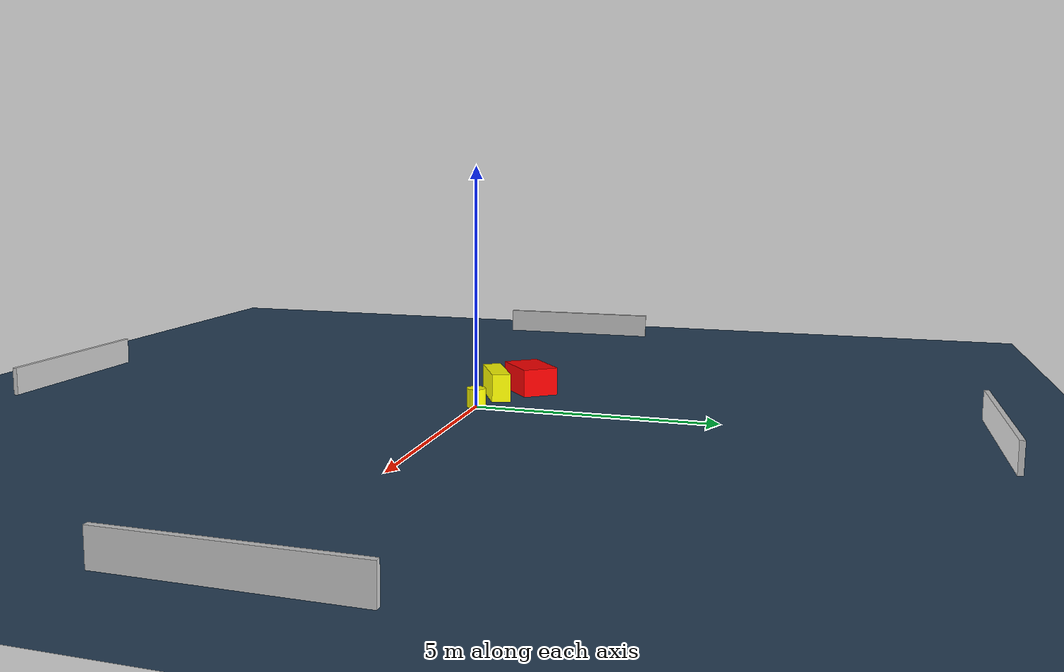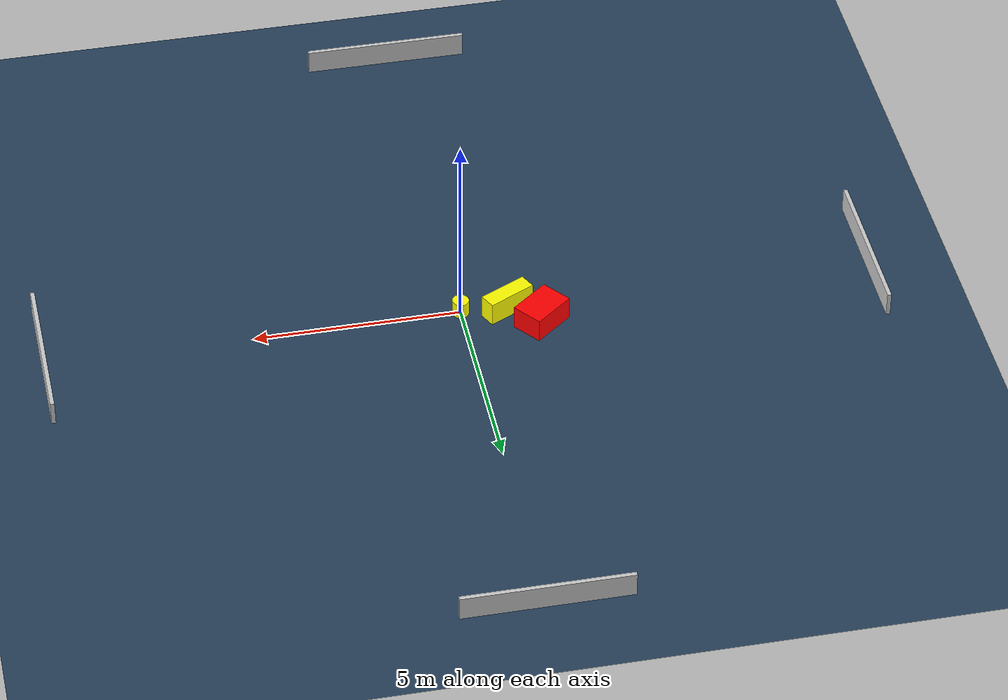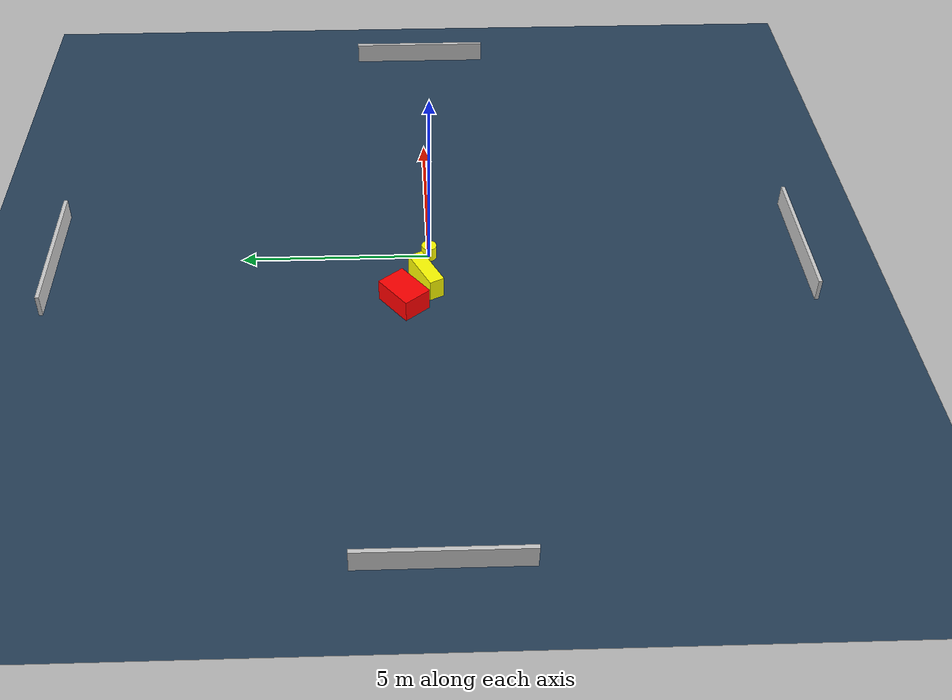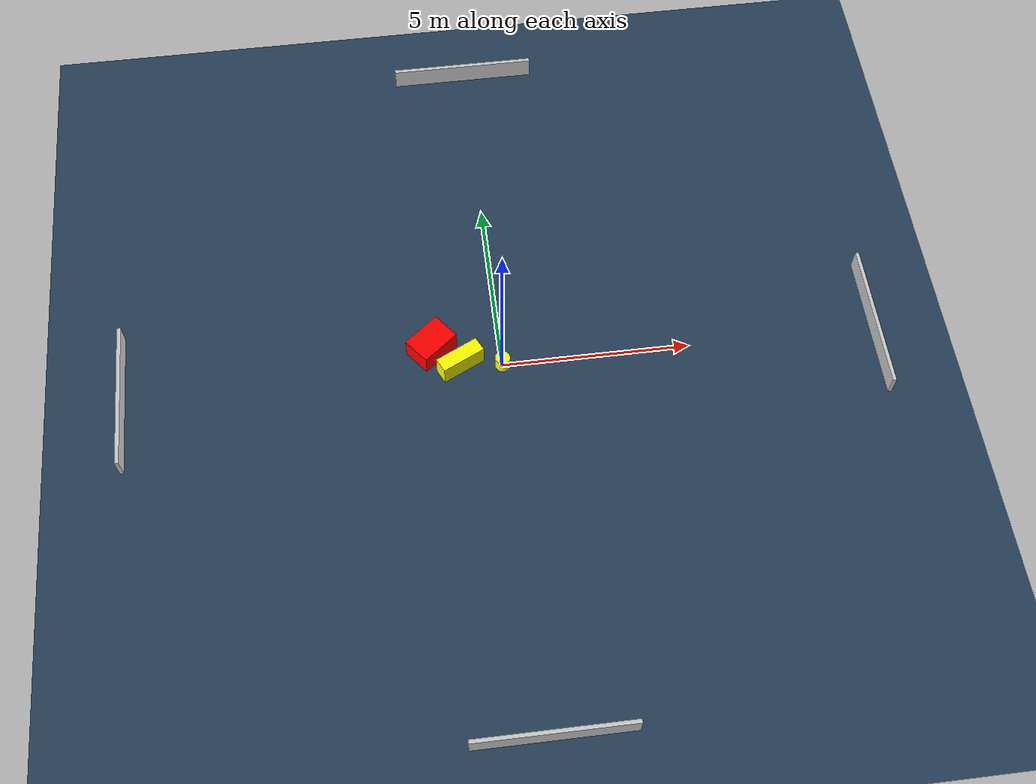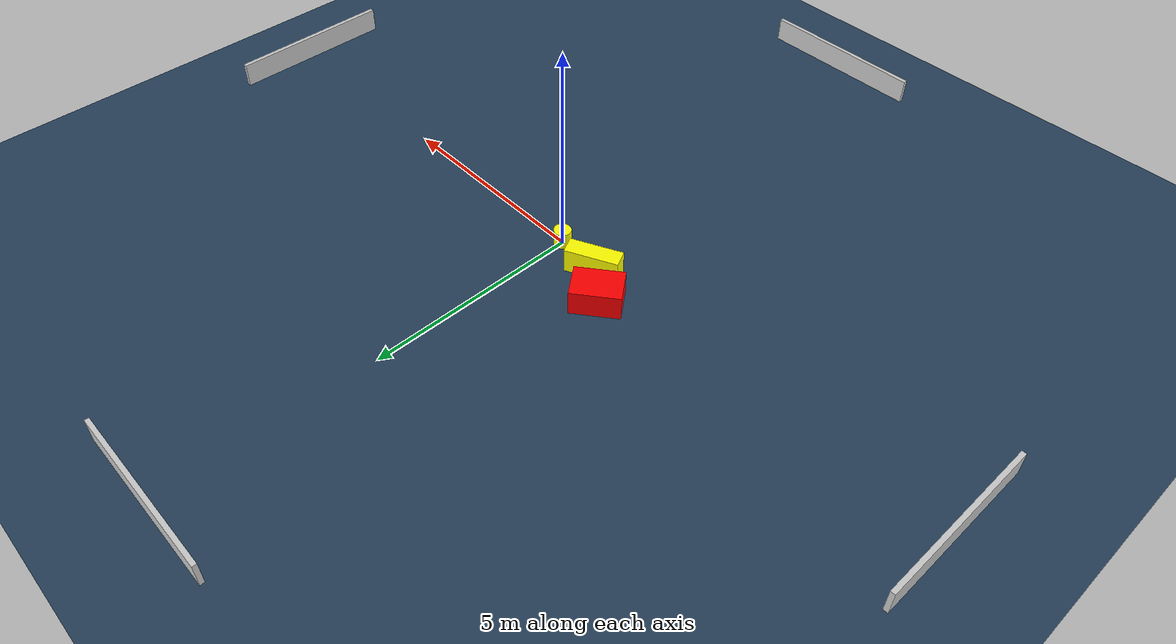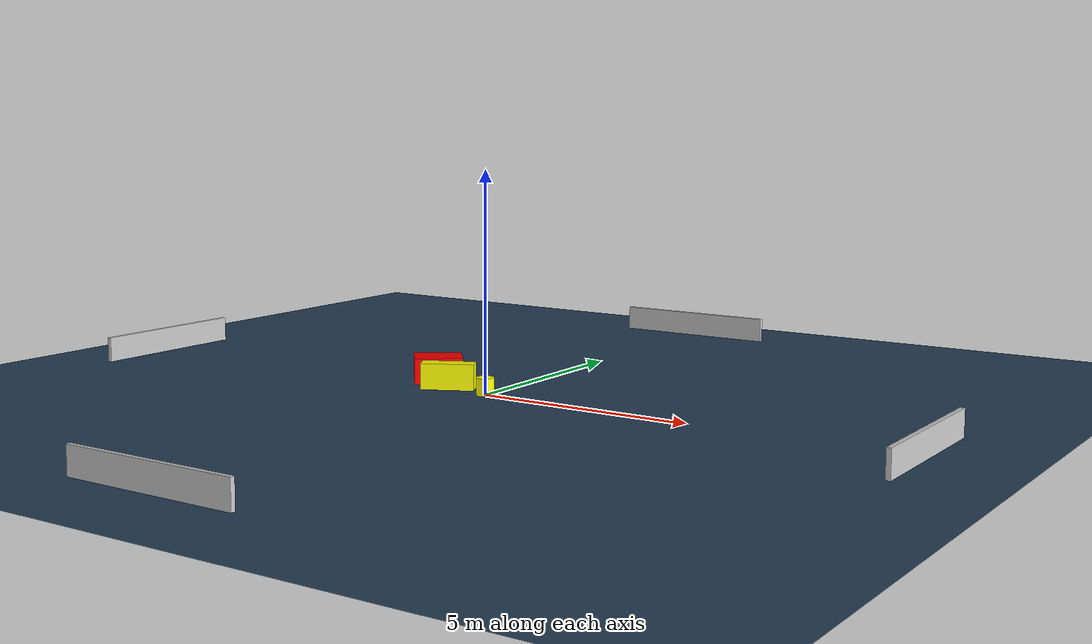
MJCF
<?xml version="1.0" ?>
<mujoco model="generated_environment">
  <option timestep="0.01" integrator="RK4" cone="elliptic"/>
  <default>
    <geom density="1"/>
  </default>
  <asset>
    <texture builtin="gradient" height="3072" name="skybox" rgb1="0.3 0.5 0.7" rgb2="0 0 0" type="skybox" width="512"/>
    <texture builtin="checker" height="300" name="groundplane" rgb1="0.2 0.3 0.4" rgb2="0.1 0.2 0.3" type="2d" width="300"/>
    <material name="groundplane" reflectance="0.2" texrepeat="5 5" texture="groundplane"/>
  </asset>
  <worldbody>
    <light dir="0 0 -1" directional="true" pos="0 0 1.5"/>
    <geom condim="3" friction="0.5 0.005 0.001" material="groundplane" name="floor" pos="0 0 0" size="0 0 0.05" type="plane"/>
    <body name="walls">
      <geom name="wall_1" condim="4" pos="-10.0 0.0 0.3" rgba="0.800000011920929 0.800000011920929 0.800000011920929 1.0" size="0.05 2.0 0.3" type="box"/>
      <geom name="wall_2" condim="4" pos="10.0 0.0 0.3" rgba="0.800000011920929 0.800000011920929 0.800000011920929 1.0" size="0.05 2.0 0.3" type="box"/>
      <geom name="wall_3" condim="4" pos="0.0 -10.0 0.3" rgba="0.800000011920929 0.800000011920929 0.800000011920929 1.0" size="2.0 0.05 0.3" type="box"/>
      <geom name="wall_4" condim="4" pos="0.0 10.0 0.3" rgba="0.800000011920929 0.800000011920929 0.800000011920929 1.0" size="2.0 0.05 0.3" type="box"/>
    </body>
    <body name="robot">
      <joint name="joint_x" type="slide" pos="0 0 0" axis="1 0 0"/>
      <joint name="joint_y" type="slide" pos="0 0 0" axis="0 1 0"/>
      <geom name="robot" type="cylinder" pos="0.0 0.0 0.2" size="0.2 0.2 0.0" mass="5.0" friction="1.0 0.005 0.0001" condim="4" rgba="1.0 1.0 0.0 1.0"/>
    </body>
    <body name="obstacle_1_movable">
      <geom name="obstacle_1_movable" condim="4" pos="-1.108908784687656 0.11352951678334113 0.3" euler="0 0 116.1476415322739" friction="0.0 0.005 0.001" rgba="1.0 1.0 0.0 1.0" size="0.20098532882063125 0.6099954973378063 0.3" type="box" mass="0.1"/>
      <joint type="free"/>
    </body>
    <body name="obstacle_2_static">
      <geom name="obstacle_2_static" condim="4" pos="-1.8223357298934686 0.6963187500321961 0.3" euler="0 0 128.33474890572845" friction="0.0 0.005 0.001" rgba="1.0 0.0 0.0 1.0" size="0.39266593960650176 0.5554542934169896 0.3" type="box"/>
    </body>
  </worldbody>
  <actuator>
    <motor name="actuator_x" joint="joint_x" gear="1" ctrlrange="-1 1"/>
    <motor name="actuator_y" joint="joint_y" gear="1" ctrlrange="-1 1"/>
  </actuator>
</mujoco>
